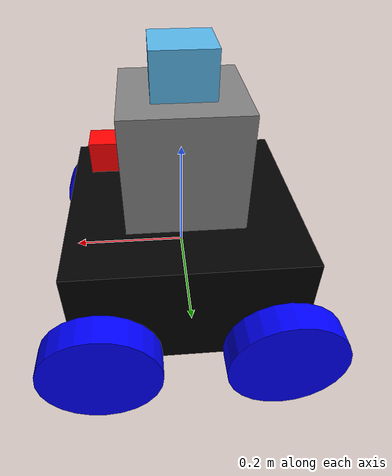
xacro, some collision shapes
<?xml version='1.0'?>

<robot name="ground_bot" xmlns:xacro="http://www.ros.org/wiki/xacro">

<xacro:include filename="$(find slam_project)/urdf/ground_bot.gazebo"/>

	<link name="robot_footprint"></link>

	<joint name="robot_footprint_joint" type="fixed">
		<origin xyz="0 0 0" rpy="0 0 0"/>
		<parent link="robot_footprint"/>
		<child link="chassis"/>
	</joint>

	<link name='chassis'>
		<pose>0 0 0.05 0 0 0</pose>

		<inertial>
			<mass value="20.0"/>
			<origin xyz="0 0 0" rpy="0 0 0"/>
			<inertia
			ixx="0.33" ixy="0" ixz="0"
			iyy="0.33" iyz="0"
			izz="0.53"
			/>
    	</inertial>

    	<collision name='collision'>
    		<origin xyz="0 0 0" rpy="0 0 0"/>
    		<geometry>
    			<box size="0.4 0.4 0.2"/>
    		</geometry>
    	</collision>

    	<visual name='chassis_visual'>
    		<origin xyz="0 0 0" rpy="0 0 0"/>
    		<geometry>
    			<box size="0.4 0.4 0.2"/>
    		</geometry>
    		<material name="black">
    			<color rgba="0 0 0 1"/>
    		</material>
    	</visual>

	</link>

	<joint name="upper_joint" type="fixed">
		<origin xyz="0 0 0.2" rpy="0 0 0"/>
		<parent link="chassis"/>
		<child link="upper_body"/>
	</joint>

	<link name="upper_body">
		<inertial>
			<mass value="10.0"/>
			<origin xyz="0 0 0" rpy="0 0 0"/>
			<inertia
			ixx="0.067" ixy="0" ixz="0"
			iyy="0.067" iyz="0"
			izz="0.067"
			/>
    	</inertial>

    	<visual name='upper_body_visual'>
    		<origin xyz="0 0 0" rpy="0 0 0"/>
    		<geometry>
    			<box size="0.2 0.2 0.2"/>
    		</geometry>
    		<material name="grey">
    			<color rgba="0.5 0.5 0.5 1"/>
    		</material>
    	</visual>

    	<collision name='upper_body_collision'>
    		<origin xyz="0 0 0" rpy="0 0 0"/>
			<geometry>
    			<box size="0.2 0.2 0.2"/>
    		</geometry>
    	</collision>
    </link>

	<joint name="left_wheel_hinge" type="continuous">
		<origin xyz="0.15 0.25 -0.05" rpy="0 0 0"/>
		<parent link="chassis"/>
		<child link="left_wheel"/>
		<axis xyz="0 1 0" rpy="0 0 0"/>
		<limit effort="10000" velocity="1000"/>
		<joint_properties damping="1.0" friction="1.0"/>
	</joint>

	<link name='left_wheel'>
		<inertial>
			<mass value="5.0"/>
			<origin xyz="0 0 0" rpy="0 1.5707 1.5707"/>
			<inertia
			ixx="0.1" ixy="0" ixz="0"
			iyy="0.1" iyz="0"
			izz="0.1"
			/>
    	</inertial>

    	<collision name='left_wheel_colision'>
			<origin xyz="0 0 0" rpy="0 1.5707 1.5707"/>
			<geometry>
				<cylinder radius="0.1" length="0.05"/>
			</geometry>
			<surface>
    			<friction>
    				<ode>
    					<mu>0.5</mu>
    					<mu2>0.5</mu2>
    				</ode>
    			</friction>
    		</surface>
		</collision>

		<visual name='left_wheel_visual'>
			<origin xyz="0 0 0" rpy="0 1.5707 1.5707"/>
			<geometry>
				<cylinder radius="0.1" length="0.05"/>
			</geometry>
			<material name="blue">
    			<color rgba="0 0 1 1"/>
    		</material>
		</visual>
	</link>

	<joint name="right_wheel_hinge" type="continuous">
		<origin xyz="0.15 -0.25 -0.05" rpy="0 0 0"/>
		<parent link="chassis"/>
		<child link="right_wheel"/>
		<axis xyz="0 1 0" rpy="0 0 0"/>
		<limit effort="10000" velocity="1000"/>
		<joint_properties damping="1.0" friction="1.0"/>
	</joint>

	<link name='right_wheel'>
		<inertial>
			<mass value="5.0"/>
			<origin xyz="0 0 0" rpy="0 1.5707 1.5707"/>
			<inertia
			ixx="0.1" ixy="0" ixz="0"
			iyy="0.1" iyz="0"
			izz="0.1"
			/>
    	</inertial>

    	<collision name='right_wheel_colision'>
			<origin xyz="0 0 0" rpy="0 1.5707 1.5707"/>
			<geometry>
				<cylinder radius="0.1" length="0.05"/>
			</geometry>
			<surface>
    			<friction>
    				<ode>
    					<mu>0.5</mu>
    					<mu2>0.5</mu2>
    				</ode>
    			</friction>
    		</surface>
		</collision>

		<visual name='right_wheel_visual'>
			<origin xyz="0 0 0" rpy="0 1.5707 1.5707"/>
			<geometry>
				<cylinder radius="0.1" length="0.05"/>
			</geometry>
			<material name="blue">
    			<color rgba="0 0 1 1"/>
    		</material>
		</visual>
	</link>

	<joint name="lback_wheel_hinge" type="continuous">
		<origin xyz="-0.15 0.25 -0.05" rpy="0 0 0"/>
		<parent link="chassis"/>
		<child link="lback_wheel"/>
		<axis xyz="0 1 0" rpy="0 0 0"/>
		<limit effort="10000" velocity="1000"/>
		<joint_properties damping="1.0" friction="1.0"/>
	</joint>

	<link name='lback_wheel'>
		<inertial>
			<mass value="5.0"/>
			<origin xyz="0 0 0" rpy="0 1.5707 1.5707"/>
			<inertia
			ixx="0.1" ixy="0" ixz="0"
			iyy="0.1" iyz="0"
			izz="0.1"
			/>
    	</inertial>

    	<collision name='lback_wheel_colision'>
			<origin xyz="0 0 0" rpy="0 1.5707 1.5707"/>
			<geometry>
				<cylinder radius="0.1" length="0.05"/>
			</geometry>
			<surface>
    			<friction>
    				<ode>
    					<mu>0.5</mu>
    					<mu2>0.5</mu2>
    				</ode>
    			</friction>
    		</surface>
		</collision>

		<visual name='lback_wheel_visual'>
			<origin xyz="0 0 0" rpy="0 1.5707 1.5707"/>
			<geometry>
				<cylinder radius="0.1" length="0.05"/>
			</geometry>
			<material name="blue">
    			<color rgba="0 0 1 1"/>
    		</material>
		</visual>
	</link>

	<joint name="rback_wheel_hinge" type="continuous">
		<origin xyz="-0.15 -0.25 -0.05" rpy="0 0 0"/>
		<parent link="chassis"/>
		<child link="rback_wheel"/>
		<axis xyz="0 1 0" rpy="0 0 0"/>
		<limit effort="10000" velocity="1000"/>
		<joint_properties damping="1.0" friction="1.0"/>
	</joint>

	<link name='rback_wheel'>
		<inertial>
			<mass value="5.0"/>
			<origin xyz="0 0 0" rpy="0 1.5707 1.5707"/>
			<inertia
			ixx="0.1" ixy="0" ixz="0"
			iyy="0.1" iyz="0"
			izz="0.1"
			/>
    	</inertial>

    	<collision name='rback_wheel_colision'>
			<origin xyz="0 0 0" rpy="0 1.5707 1.5707"/>
			<geometry>
				<cylinder radius="0.1" length="0.05"/>
			</geometry>
			<surface>
    			<friction>
    				<ode>
    					<mu>0.5</mu>
    					<mu2>0.5</mu2>
    				</ode>
    			</friction>
    		</surface>
		</collision>

		<visual name='rback_wheel_visual'>
			<origin xyz="0 0 0" rpy="0 1.5707 1.5707"/>
			<geometry>
				<cylinder radius="0.1" length="0.05"/>
			</geometry>
			<material name="blue">
    			<color rgba="0 0 1 1"/>
    		</material>
		</visual>
	</link>

	<joint type="fixed" name="camera_joint">
		<origin xyz="0.125 0 0.2" rpy="0 0 0"/>
		<child link="camera"/>
		<parent link="chassis"/>
	</joint>

	<link name='camera'>

		<inertial>
		  <mass value="0.1"/>
		  <origin xyz="0 0 0" rpy="0 0 0"/>
		  <inertia ixx="1e-6" ixy="0" ixz="0" iyy="1e-6" iyz="0" izz="1e-6"/>
		</inertial>

		<visual name='camera_visual'>
		  <origin xyz="0 0 0" rpy="0 0 0"/>
		  <geometry>
		    <box size="0.05 0.05 0.05"/>
		  </geometry>
		  <material name="red">
		    <color rgba="1 0 0 1"/>
		  </material>
		</visual>

		<collision name='camera_collision'>
		  <origin xyz="0 0 0" rpy="0 0 0"/>
		  <geometry>
		    <box size="0.05 0.05 0.05"/>
		  </geometry>
		</collision>

	</link>

	<joint type="fixed" name="kinect_rpy_joint">
		<origin xyz="0.125 0 0.2" rpy="-1.58 0 -1.58"/>
		<child link="camera_rgbd_frame"/>
		<parent link="camera"/>
	</joint>

	<link name='camera_rgbd_frame'>

		<inertial>
		  <mass value="0.0"/>
		  <origin xyz="0 0 0" rpy="0 0 0"/>
		  <inertia ixx="0" ixy="0" ixz="0" iyy="0" iyz="0" izz="0"/>
		</inertial>

	</link>

	<joint type="fixed" name="hokuyo_joint">
		<origin xyz="0 0 .325" rpy="0 0 0"/>
		<child link="hokuyo"/>
		<parent link="chassis"/>
	</joint>

	<link name='hokuyo'>

		<inertial>
			<mass value="0.1"/>
			<origin xyz="0 0 0" rpy="0 0 0"/>
			<inertia ixx="1e-6" ixy="0" ixz="0" iyy="1e-6" iyz="0" izz="1e-6"/>
		</inertial>

		<visual name='hokuyo_visual'>
			<origin xyz="0 0 0" rpy="0 0 0"/>
			<geometry>
				<mesh filename="package://slam_project/meshes/hokuyo.dae"/>
			</geometry>
		</visual>

		<collision name='hokuyo_collision'>
			<origin xyz="0 0 0" rpy="0 0 0"/>
			<geometry>
				<box size="0.1 0.1 0.1"/>
			</geometry>
		</collision>

	</link>

</robot>
